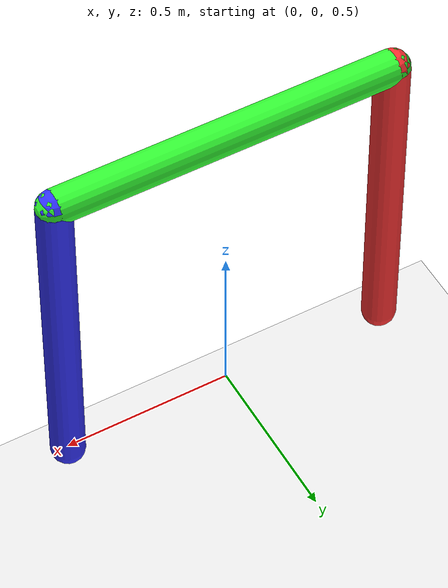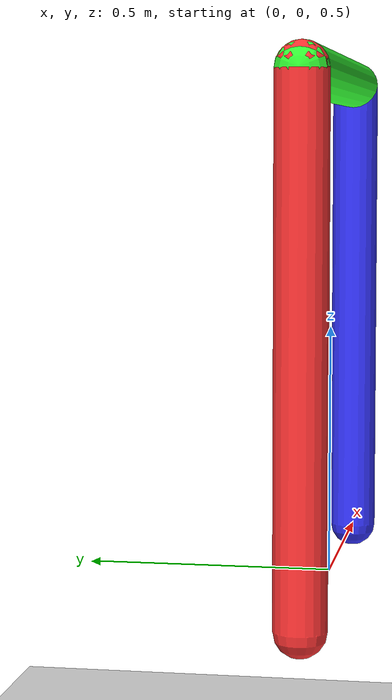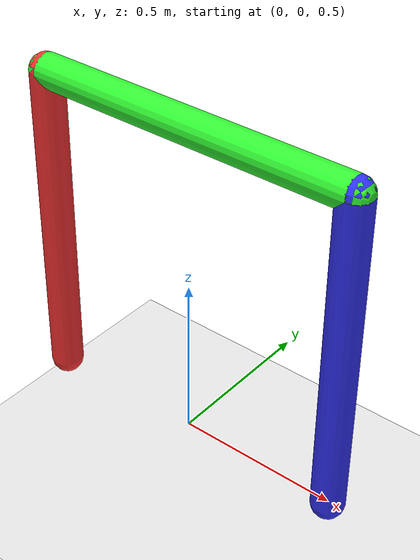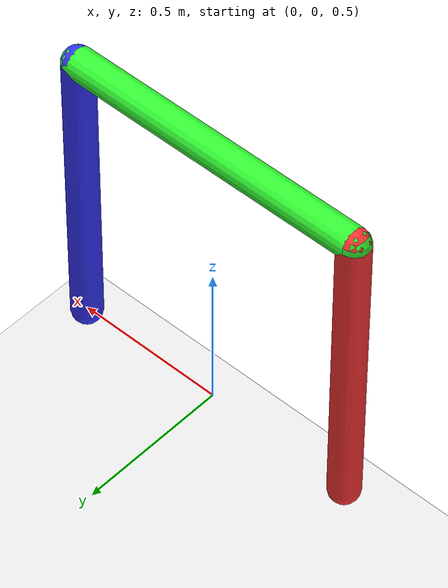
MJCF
<mujoco model="four_bar_linkage">
    <compiler angle="degree"/>

    <!-- シミュレーション全体のオプション設定 -->
    <option gravity="0 0 -9.8"/>

    <!-- デフォルト設定: 見やすさのための太さや、ジョイントの減衰(damping)を設定 -->
    <default>
        <geom type="capsule" size="0.05"/>
        <joint damping="0.05"/>
    </default>

    <worldbody>
        <!-- 照明と床 -->
        <light pos="0 0 5" dir="0 0 -1" diffuse="1 1 1"/>
        <geom type="plane" size="2 2 0.1" rgba="0.9 0.9 0.9 1"/>

        <!--
          【木構造1】左側のリンク(link1)と、上部の水平リンク(link2)
        -->
        <body name="link1" pos="-0.5 0 0.5">
            <joint name="joint1" type="hinge" axis="0 1 0"/>
            <geom fromto="0 0 0  0 0 1" rgba="1 0.2 0.2 1"/> <!-- 赤色 -->

            <body name="link2" pos="0 0 1">
                <joint name="joint2" type="hinge" axis="0 1 0"/>
                <geom fromto="0 0 0  1 0 0" rgba="0.2 1 0.2 1"/> <!-- 緑色 -->
                <!-- link2の先端はグローバル座標で (0.5, 0, 1.5) に位置する -->
            </body>
        </body>

        <!--
          【木構造2】右側のリンク(link3)
        -->
        <body name="link3" pos="0.5 0 0.5">
            <joint name="joint3" type="hinge" axis="0 1 0"/>
            <geom fromto="0 0 0  0 0 1" rgba="0.2 0.2 1 1"/> <!-- 青色 -->
            <!-- link3の先端もグローバル座標で (0.5, 0, 1.5) に位置する -->
        </body>
    </worldbody>

    <!-- 切断されている link2 の先端と link3 の先端を強制的に結合する -->
    <equality>
        <!-- anchor を body1 (link2) のローカル座標で指定。solref と solimp は拘束の「硬さ」を調整するパラメータ。 -->
        <connect body1="link2" body2="link3" anchor="1 0 0"
                 solref="0.005 1" solimp="0.99 0.99 0.001" />
    </equality>

    <!-- link2とlink3の衝突判定を除外する -->
    <contact>
        <exclude body1="link2" body2="link3"/>
    </contact>

    <!-- 動作確認用のモーター（左側の根元のジョイントを動かす） -->
    <actuator>
        <motor joint="joint1" ctrlrange="-1 1" gear="20"/>
    </actuator>

</mujoco>
